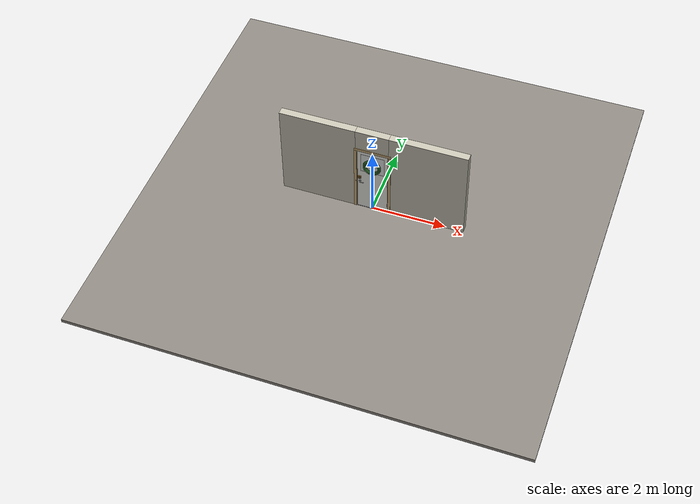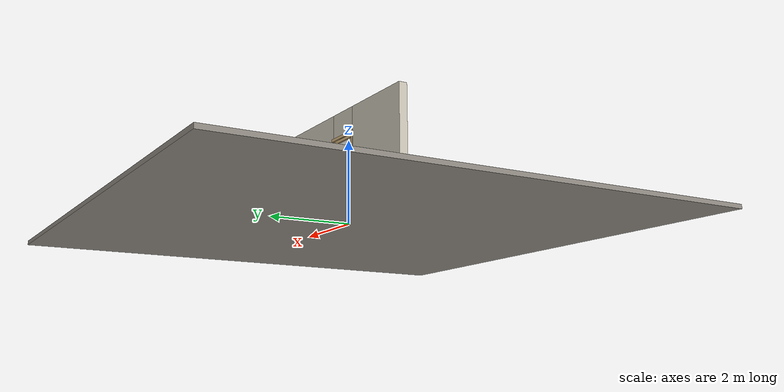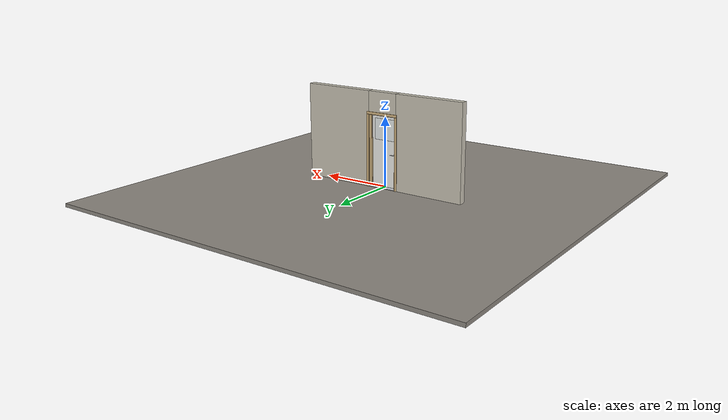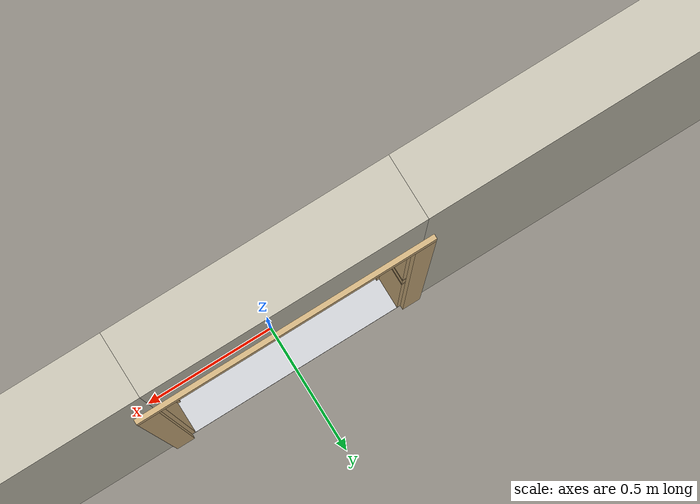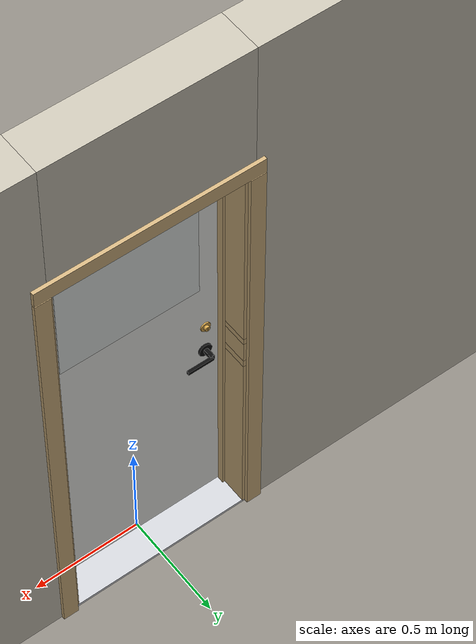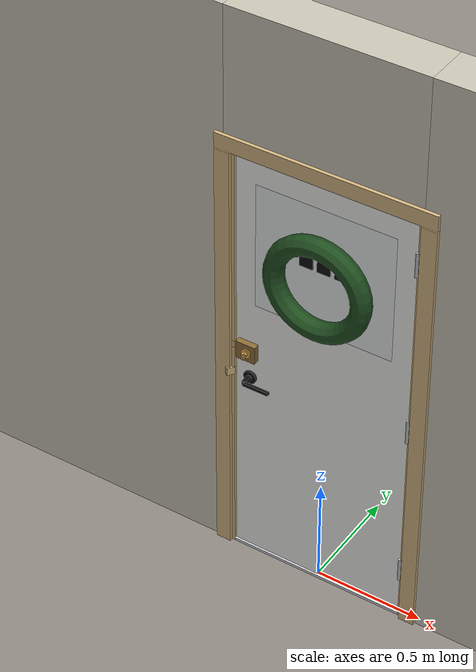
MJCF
<?xml version="1.0" ?>
<mujoco model="db0304_swing_single_full">
  <compiler angle="radian" meshdir="../../hardware" texturedir="../../textures" autolimits="true" inertiafromgeom="false"/>
  <option timestep="0.002" integrator="implicitfast" cone="elliptic" impratio="10" noslip_iterations="3">
    <flag multiccd="enable"/>
  </option>
  <size memory="16M"/>
  <default>
    <geom condim="4" solref="0.005 1" solimp="0.95 0.99 0.001"/>
    <joint solreflimit="0.005 1" solimplimit="0.95 0.99 0.001"/>
    <tendon solreflimit="0.005 1"/>
    <equality solref="0.002 1"/>
  </default>
  <visual>
    <headlight ambient="0.4 0.4 0.4" diffuse="0.7 0.7 0.7" specular="0.2 0.2 0.2"/>
    <quality shadowsize="4096"/>
    <map znear="0.01" zfar="60"/>
  </visual>
  <asset>
    <mesh name="cyl_face_e9e5036966" file="cyl_face_e9e5036966.obj"/>
    <mesh name="hinge_e22b26c0c1" file="hinge_e22b26c0c1.obj"/>
    <mesh name="hinge_jamb_e1d088f8dc" file="hinge_jamb_e1d088f8dc.obj"/>
    <mesh name="house_numbers_ad0a8e8be0" file="house_numbers_ad0a8e8be0.obj"/>
    <mesh name="lever_57205841c3" file="lever_57205841c3.obj"/>
    <mesh name="thumbturn_eb5c9899a3" file="thumbturn_eb5c9899a3.obj"/>
    <mesh name="wreath_86a3f1bf8b" file="wreath_86a3f1bf8b.obj"/>
    <material name="mat_floor" rgba="0.55 0.53 0.5 1" specular="0.2" shininess="0.15" reflectance="0"/>
    <material name="mat_wall" rgba="0.78 0.76 0.7 1" specular="0.2" shininess="0.1" reflectance="0"/>
    <material name="mat_leaf" rgba="0.93 0.93 0.91 1" specular="0.2" shininess="0.49" reflectance="0"/>
    <material name="mat_glass" rgba="0.85 0.92 0.95 0.25" specular="0.2" shininess="0.95" reflectance="0.1"/>
    <material name="mat_hinge" rgba="0.65 0.66 0.68 1" specular="0.74" shininess="0.5" reflectance="0.36"/>
    <material name="mat_op_black_matte_metal" rgba="0.05 0.05 0.05 1" specular="0.38" shininess="0.3" reflectance="0.12"/>
    <material name="mat_trim" rgba="0.85 0.66 0.3 1" specular="0.8" shininess="0.75" reflectance="0.4"/>
    <material name="mat_bolt" rgba="0.85 0.66 0.3 1" specular="0.8" shininess="0.75" reflectance="0.4"/>
    <material name="mat_night_latch" rgba="0.55 0.42 0.22 1" specular="0.74" shininess="0.45" reflectance="0.36"/>
    <material name="mat_deadbolt" rgba="0.85 0.66 0.3 1" specular="0.8" shininess="0.75" reflectance="0.4"/>
    <material name="mat_frame" rgba="0.82 0.7 0.5 1" specular="0.2" shininess="0.45" reflectance="0"/>
    <material name="mat_threshold" rgba="0.8 0.81 0.83 1" specular="0.8" shininess="0.6" reflectance="0.4"/>
    <material name="mat_numbers" rgba="0.05 0.05 0.05 1" specular="0.38" shininess="0.3" reflectance="0.12"/>
    <material name="mat_wreath" rgba="0.12 0.3 0.12 1" specular="0.2" shininess="0.05" reflectance="0"/>
    <material name="mat_wreath_hook" rgba="0.85 0.66 0.3 1" specular="0.8" shininess="0.75" reflectance="0.4"/>
    <texture name="skybox" type="skybox" builtin="gradient" rgb1="0.6 0.7 0.85" rgb2="0.9 0.92 0.95" width="256" height="256"/>
  </asset>
  <worldbody>
    <light name="sun" pos="1.5 -2.5 4" dir="-0.3 0.5 -0.8" directional="true" diffuse="0.8 0.8 0.8" specular="0.3 0.3 0.3" castshadow="true"/>
    <light name="fill" pos="-1.5 2.5 3" dir="0.3 -0.5 -0.7" directional="true" diffuse="0.35 0.35 0.4" castshadow="false"/>
    <camera name="robot_view" pos="0 -2.471187 1.734312" xyaxes="1 0 0 0 0.26963 0.962964" fovy="52"/>
    <camera name="far_view" pos="0 2.613187 1.734312" xyaxes="-1 0 0 0 -0.26963 0.962964" fovy="52"/>
    <camera name="iso" pos="-1.932062 -2.064437 2.141063" xyaxes="0.741536 -0.670913 0 0.242917 0.268487 0.932151" fovy="46"/>
    <camera name="detail_handle" pos="-0.0595 -0.877 1.245" xyaxes="0.97561 0.219512 0 -0.070934 0.315262 0.94635" fovy="38"/>
    <geom name="floor" type="box" size="6 6 0.05" pos="0 0 -0.05" material="mat_floor" group="0" contype="1" conaffinity="1" friction="0.8 0.005 0.0001" density="2400"/>
    <geom name="wall_left" type="box" size="1.02025 0.1 1.35" pos="-1.47975 0.071 1.35" material="mat_wall" group="0" contype="1" conaffinity="1" friction="0.6 0.005 0.0001" density="800"/>
    <geom name="wall_right" type="box" size="1.03525 0.1 1.35" pos="1.46475 0.071 1.35" material="mat_wall" group="0" contype="1" conaffinity="1" friction="0.6 0.005 0.0001" density="800"/>
    <geom name="wall_header" type="box" size="0.4445 0.1 0.303" pos="-0.015 0.071 2.397" material="mat_wall" group="0" contype="1" conaffinity="1" friction="0.6 0.005 0.0001" density="800"/>
    <geom name="hinge_0_jamb" type="mesh" mesh="hinge_jamb_e1d088f8dc" pos="0.4075 -0.029 0.267" quat="0 0 1 0" material="mat_hinge" group="1" contype="0" conaffinity="0" density="7850"/>
    <geom name="hinge_1_jamb" type="mesh" mesh="hinge_jamb_e1d088f8dc" pos="0.4075 -0.029 1.029" quat="0 0 1 0" material="mat_hinge" group="1" contype="0" conaffinity="0" density="7850"/>
    <geom name="hinge_2_jamb" type="mesh" mesh="hinge_jamb_e1d088f8dc" pos="0.4075 -0.029 1.861" quat="0 0 1 0" material="mat_hinge" group="1" contype="0" conaffinity="0" density="7850"/>
    <geom name="leaf_deadbolt_strike_b" type="box" size="0.0155 0.003 0.0005" pos="-0.41 0 1.0865" quat="0.5 0.5 0.5 0.5" material="mat_deadbolt" group="1" contype="0" conaffinity="0" density="7800"/>
    <geom name="leaf_deadbolt_strike_l" type="box" size="0.003 0.0155 0.0005" pos="-0.41 -0.0125 1.105" quat="0.5 0.5 0.5 0.5" material="mat_deadbolt" group="1" contype="0" conaffinity="0" density="7800"/>
    <geom name="leaf_deadbolt_strike_t" type="box" size="0.0155 0.003 0.0005" pos="-0.41 0 1.1235" quat="0.5 0.5 0.5 0.5" material="mat_deadbolt" group="1" contype="0" conaffinity="0" density="7800"/>
    <geom name="leaf_deadbolt_strike_r" type="box" size="0.003 0.0155 0.0005" pos="-0.41 0.0125 1.105" quat="0.5 0.5 0.5 0.5" material="mat_deadbolt" group="1" contype="0" conaffinity="0" density="7800"/>
    <geom name="jamb_hinge" type="box" size="0.0095 0.1 1.0225" pos="0.42 0.071 1.0225" material="mat_frame" group="0" contype="1" conaffinity="1" friction="0.6 0.005 0.0001" density="400"/>
    <geom name="strike_965_wall_n" type="box" size="0.0245 0.08075 0.0183" pos="-0.435 0.09025 0.965" material="mat_frame" group="0" contype="1" conaffinity="1" friction="0.6 0.005 0.0001" density="400"/>
    <geom name="strike_965_wall_p" type="box" size="0.0245 0.008 0.0183" pos="-0.435 -0.0175 0.965" material="mat_frame" group="0" contype="1" conaffinity="1" friction="0.6 0.005 0.0001" density="400"/>
    <geom name="strike_965_ramp" type="box" size="0.0245 0.018028 0.0183" pos="-0.440885 -0.02691 0.965" quat="0.957092 0 0 -0.289784" material="mat_frame" group="0" contype="1" conaffinity="1" friction="0.12 0.005 0.0001" density="400"/>
    <geom name="strike_965_back" type="box" size="0.013 0.0095 0.0183" pos="-0.4465 0 0.965" material="mat_frame" group="0" contype="1" conaffinity="1" friction="0.6 0.005 0.0001" density="400"/>
    <geom name="strike_1105_wall_n" type="box" size="0.0245 0.08075 0.0155" pos="-0.435 0.09025 1.105" material="mat_frame" group="0" contype="1" conaffinity="1" friction="0.6 0.005 0.0001" density="400"/>
    <geom name="strike_1105_wall_p" type="box" size="0.0245 0.00975 0.0155" pos="-0.435 -0.01925 1.105" material="mat_frame" group="0" contype="1" conaffinity="1" friction="0.6 0.005 0.0001" density="400"/>
    <geom name="strike_1105_back" type="box" size="0.0145 0.0095 0.0155" pos="-0.445 0 1.105" material="mat_frame" group="0" contype="1" conaffinity="1" friction="0.6 0.005 0.0001" density="400"/>
    <geom name="jamb_strike_0" type="box" size="0.0245 0.1 0.47335" pos="-0.435 0.071 0.47335" material="mat_frame" group="0" contype="1" conaffinity="1" friction="0.6 0.005 0.0001" density="400"/>
    <geom name="jamb_strike_1" type="box" size="0.0245 0.1 0.0531" pos="-0.435 0.071 1.0364" material="mat_frame" group="0" contype="1" conaffinity="1" friction="0.6 0.005 0.0001" density="400"/>
    <geom name="jamb_strike_2" type="box" size="0.0245 0.1 0.46225" pos="-0.435 0.071 1.58275" material="mat_frame" group="0" contype="1" conaffinity="1" friction="0.6 0.005 0.0001" density="400"/>
    <geom name="jamb_head" type="box" size="0.4445 0.1 0.0095" pos="-0.015 0.071 2.0545" material="mat_frame" group="0" contype="1" conaffinity="1" friction="0.6 0.005 0.0001" density="400"/>
    <geom name="head_stud" type="box" size="0.4445 0.1 0.015" pos="-0.015 0.071 2.079" material="mat_wall" group="0" contype="1" conaffinity="1" friction="0.6 0.005 0.0001" density="500"/>
    <geom name="stop_hinge" type="box" size="0.0055 0.016 1.0225" pos="0.405 0.0385 1.0225" material="mat_frame" group="0" contype="1" conaffinity="1" friction="0.6 0.005 0.0001" density="400"/>
    <geom name="stop_strike" type="box" size="0.0055 0.016 1.0225" pos="-0.405 0.0385 1.0225" material="mat_frame" group="0" contype="1" conaffinity="1" friction="0.6 0.005 0.0001" density="400"/>
    <geom name="stop_head" type="box" size="0.4105 0.016 0.0055" pos="0 0.0385 2.0395" material="mat_frame" group="0" contype="1" conaffinity="1" friction="0.6 0.005 0.0001" density="400"/>
    <geom name="casing_l_n" type="box" size="0.035 0.008 1.032" pos="-0.4595 -0.037 1.0225" material="mat_frame" group="2" contype="0" conaffinity="0" density="400"/>
    <geom name="casing_r_n" type="box" size="0.035 0.008 1.032" pos="0.4595 -0.037 1.0225" material="mat_frame" group="2" contype="0" conaffinity="0" density="400"/>
    <geom name="casing_h_n" type="box" size="0.4945 0.008 0.035" pos="0 -0.037 2.094" material="mat_frame" group="2" contype="0" conaffinity="0" density="400"/>
    <geom name="casing_l_p" type="box" size="0.035 0.008 1.032" pos="-0.4595 0.179 1.0225" material="mat_frame" group="2" contype="0" conaffinity="0" density="400"/>
    <geom name="casing_r_p" type="box" size="0.035 0.008 1.032" pos="0.4595 0.179 1.0225" material="mat_frame" group="2" contype="0" conaffinity="0" density="400"/>
    <geom name="casing_h_p" type="box" size="0.4945 0.008 0.035" pos="0 0.179 2.094" material="mat_frame" group="2" contype="0" conaffinity="0" density="400"/>
    <geom name="threshold" type="box" size="0.4295 0.1 0.0065" pos="0 0.071 0.0065" material="mat_threshold" group="0" contype="1" conaffinity="1" friction="0.5 0.005 0.0001" density="2700"/>
    <site name="approach_point" pos="0 -1.5 0" quat="1 0 0 0" size="0.05" rgba="0.2 0.9 0.2 0.5" group="4"/>
    <site name="goal_point" pos="0 1.5 0" quat="1 0 0 0" size="0.05" rgba="0.2 0.9 0.2 0.5" group="4"/>
    <site name="door_plane_center" pos="0 0 1.0225" quat="1 0 0 0" size="0.02" rgba="0.2 0.9 0.2 0.5" group="4"/>
    <body name="leaf" pos="0.4105 0 0">
      <inertial pos="-0.40615 -0.008002 1.08617" mass="22.475552" quat="0.501921 -0.496632 -0.498449 -0.502971" diaginertia="1.338618232 7.416635515 8.728477626"/>
      <joint name="leaf_hinge" type="hinge" axis="0 0 1" pos="-0.003 -0.029 0" limited="true" range="0 2.268928" damping="0.210326" frictionloss="0.097273" armature="0.02"/>
      <geom name="leaf_slab" type="box" size="0.4065 0.022 1.012" pos="-0.4095 0 1.029" material="mat_leaf" group="0" contype="1" conaffinity="1" friction="0.4 0.005 0.0001" density="1"/>
      <geom name="leaf_glass_0" type="box" size="0.3165 0.0228 0.297528" pos="-0.4095 0 1.642272" material="mat_glass" group="1" contype="0" conaffinity="0" density="1"/>
      <geom name="hinge_0" type="mesh" mesh="hinge_e22b26c0c1" pos="-0.003 -0.029 0.267" quat="0 0 1 0" material="mat_hinge" group="1" contype="0" conaffinity="0" density="7850"/>
      <geom name="hinge_1" type="mesh" mesh="hinge_e22b26c0c1" pos="-0.003 -0.029 1.029" quat="0 0 1 0" material="mat_hinge" group="1" contype="0" conaffinity="0" density="7850"/>
      <geom name="hinge_2" type="mesh" mesh="hinge_e22b26c0c1" pos="-0.003 -0.029 1.861" quat="0 0 1 0" material="mat_hinge" group="1" contype="0" conaffinity="0" density="7850"/>
      <geom name="leaf_latch_bolt_faceplate" type="box" size="0.0006 0.014 0.0283" pos="-0.8154 0 0.965" material="mat_bolt" group="1" contype="0" conaffinity="0" density="8500"/>
      <geom name="leaf_night_latch_case" type="box" size="0.046 0.014 0.042" pos="-0.756 -0.036 1.105" material="mat_night_latch" group="0" contype="1" conaffinity="1" friction="0.6 0.005 0.0001" density="2500"/>
      <geom name="leaf_deadbolt_faceplate" type="box" size="0.0006 0.014 0.0245" pos="-0.8154 0 1.105" material="mat_deadbolt" group="1" contype="0" conaffinity="0" density="8500"/>
      <geom name="leaf_deadbolt_cylinder_face" type="mesh" mesh="cyl_face_e9e5036966" pos="-0.751 0.022 1.105" quat="0 0 0.707107 0.707107" material="mat_deadbolt" group="1" contype="0" conaffinity="0" density="7100"/>
      <geom name="house_numbers" type="mesh" mesh="house_numbers_ad0a8e8be0" pos="-0.4095 -0.022 1.691" quat="0 0 -0.707107 0.707107" material="mat_numbers" group="2" contype="0" conaffinity="0" density="1000"/>
      <geom name="wreath" type="mesh" mesh="wreath_86a3f1bf8b" pos="-0.4095 -0.022 1.59572" quat="0 0 -0.707107 0.707107" material="mat_wreath" group="2" contype="0" conaffinity="0" density="200"/>
      <geom name="wreath_hook" type="cylinder" size="0.004 0.008" pos="-0.4095 -0.029 1.78372" quat="0.707107 -0.707107 0 0" material="mat_wreath_hook" group="2" contype="0" conaffinity="0" density="8500"/>
      <site name="leaf_edge_mid" pos="-0.816 0 1.012" quat="1 0 0 0" size="0.02" rgba="0.2 0.9 0.2 0.5" group="4"/>
      <body name="leaf_handle" pos="-0.746 0 0.965">
        <inertial pos="0.018425 0 0" mass="0.806444" quat="0 0.707107 0.707107 0" diaginertia="0.001006485 0.002593405 0.00349528"/>
        <joint name="leaf_handle_hinge" type="hinge" axis="0 1 0" limited="true" range="0 0.87" damping="0.212417" frictionloss="0.042" stiffness="1" springref="-0.35" armature="0.01"/>
        <geom name="leaf_handle_spindle" type="cylinder" size="0.006 0.03" pos="0 0 0" quat="0.707107 -0.707107 0 0" material="mat_op_black_matte_metal" group="1" contype="0" conaffinity="0" density="7850"/>
        <geom name="leaf_handle_lever_n" type="mesh" mesh="lever_57205841c3" pos="0 -0.022 0" quat="0 0 -0.707107 0.707107" material="mat_op_black_matte_metal" group="1" contype="0" conaffinity="0" density="3000"/>
        <geom name="leaf_handle_lever_col_n" type="capsule" size="0.007 0.053" pos="0.06 -0.077 0" quat="0.707107 0 0.707107 0" material="mat_op_black_matte_metal" group="3" contype="1" conaffinity="1" rgba="0.8 0.3 0.3 0.25" friction="0.7 0.01 0.0001" density="3000"/>
        <geom name="leaf_handle_hub_col_n" type="cylinder" size="0.012 0.022" pos="0 -0.052 0" quat="0.707107 -0.707107 0 0" material="mat_op_black_matte_metal" group="3" contype="1" conaffinity="1" rgba="0.8 0.3 0.3 0.25" friction="0.6 0.005 0.0001" density="3000"/>
        <geom name="leaf_handle_lever_p" type="mesh" mesh="lever_57205841c3" pos="0 0.022 0" quat="0 0 0.707107 0.707107" material="mat_op_black_matte_metal" group="1" contype="0" conaffinity="0" density="3000"/>
        <geom name="leaf_handle_lever_col_p" type="capsule" size="0.007 0.053" pos="0.06 0.077 0" quat="0.707107 0 0.707107 0" material="mat_op_black_matte_metal" group="3" contype="1" conaffinity="1" rgba="0.8 0.3 0.3 0.25" friction="0.7 0.01 0.0001" density="3000"/>
        <geom name="leaf_handle_hub_col_p" type="cylinder" size="0.012 0.022" pos="0 0.052 0" quat="0.707107 -0.707107 0 0" material="mat_op_black_matte_metal" group="3" contype="1" conaffinity="1" rgba="0.8 0.3 0.3 0.25" friction="0.6 0.005 0.0001" density="3000"/>
        <site name="leaf_handle_grip_n" pos="0.096 -0.077 0" quat="1 0 0 0" size="0.012" rgba="0.2 0.9 0.2 0.5" group="4"/>
        <site name="leaf_handle_grip_p" pos="0.096 0.077 0" quat="1 0 0 0" size="0.012" rgba="0.2 0.9 0.2 0.5" group="4"/>
      </body>
      <body name="leaf_latch_bolt" pos="-0.816 0 0.965">
        <inertial pos="0.0055 0 0" mass="0.074627" quat="0.92388 0.382683 0 0" diaginertia="0.000002271 0.000013255 0.000013255"/>
        <joint name="leaf_latch_bolt_slide" type="slide" axis="1 0 0" limited="true" range="0 0.019" damping="2" frictionloss="0.3" stiffness="600" springref="-0.01" armature="0.1"/>
        <geom name="leaf_latch_bolt_capsule" type="capsule" size="0.008 0.0165" pos="0.0055 0 0" quat="0.707107 0 -0.707107 0" material="mat_bolt" group="0" contype="1" conaffinity="1" friction="0.2 0.005 0.0001" density="8500"/>
      </body>
      <body name="leaf_deadbolt" pos="-0.816 0 1.105">
        <inertial pos="0.007 0 0" mass="0.1564" quat="0 0 0.707107 0.707107" diaginertia="0.000011482 0.000030915 0.000035724"/>
        <joint name="leaf_deadbolt_slide" type="slide" axis="1 0 0" limited="true" range="0 0.016" damping="5" frictionloss="1.5" armature="0.1"/>
        <geom name="leaf_deadbolt_box" type="box" size="0.023 0.008 0.0125" pos="0.007 0 0" material="mat_deadbolt" group="0" contype="1" conaffinity="1" friction="0.3 0.005 0.0001" density="8500"/>
      </body>
      <body name="leaf_deadbolt_thumbturn" pos="-0.751 -0.05 1.105">
        <inertial pos="0 -0.012928 0" mass="0.178946" quat="0.5 0.5 0.5 0.5" diaginertia="0.000026045 0.000026215 0.000032438"/>
        <joint name="leaf_deadbolt_thumbturn_hinge" type="hinge" axis="0 1 0" limited="true" range="0 1" damping="0.05" frictionloss="0.25" armature="0.005"/>
        <geom name="leaf_deadbolt_thumbturn_mesh" type="mesh" mesh="thumbturn_eb5c9899a3" pos="0 0 0" quat="0 0 -0.707107 0.707107" material="mat_deadbolt" group="0" contype="1" conaffinity="1" friction="0.6 0.005 0.0001" density="7100"/>
        <geom name="leaf_deadbolt_thumbturn_col" type="box" size="0.006 0.012 0.016" pos="0 -0.02 0" material="mat_deadbolt" group="3" contype="1" conaffinity="1" rgba="0.8 0.3 0.3 0.25" friction="0.6 0.005 0.0001" density="7100"/>
      </body>
    </body>
  </worldbody>
  <tendon>
    <fixed name="leaf_latch_bolt_coupling" limited="true" range="0 10">
      <joint joint="leaf_latch_bolt_slide" coef="1"/>
      <joint joint="leaf_handle_hinge" coef="-0.023457"/>
    </fixed>
  </tendon>
  <equality>
    <joint name="leaf_deadbolt_couple" joint1="leaf_deadbolt_slide" joint2="leaf_deadbolt_thumbturn_hinge" polycoef="0 0.016 0 0 0" active="true"/>
  </equality>
  <contact>
    <exclude body1="leaf_deadbolt" body2="leaf_deadbolt_thumbturn"/>
  </contact>
  <sensor>
    <jointpos name="leaf_hinge_pos" joint="leaf_hinge"/>
    <jointvel name="leaf_hinge_vel" joint="leaf_hinge"/>
    <jointpos name="leaf_handle_hinge_pos" joint="leaf_handle_hinge"/>
    <jointvel name="leaf_handle_hinge_vel" joint="leaf_handle_hinge"/>
    <jointpos name="leaf_latch_bolt_slide_pos" joint="leaf_latch_bolt_slide"/>
    <jointvel name="leaf_latch_bolt_slide_vel" joint="leaf_latch_bolt_slide"/>
    <jointpos name="leaf_deadbolt_slide_pos" joint="leaf_deadbolt_slide"/>
    <jointvel name="leaf_deadbolt_slide_vel" joint="leaf_deadbolt_slide"/>
    <jointpos name="leaf_deadbolt_thumbturn_hinge_pos" joint="leaf_deadbolt_thumbturn_hinge"/>
    <jointvel name="leaf_deadbolt_thumbturn_hinge_vel" joint="leaf_deadbolt_thumbturn_hinge"/>
  </sensor>
</mujoco>
